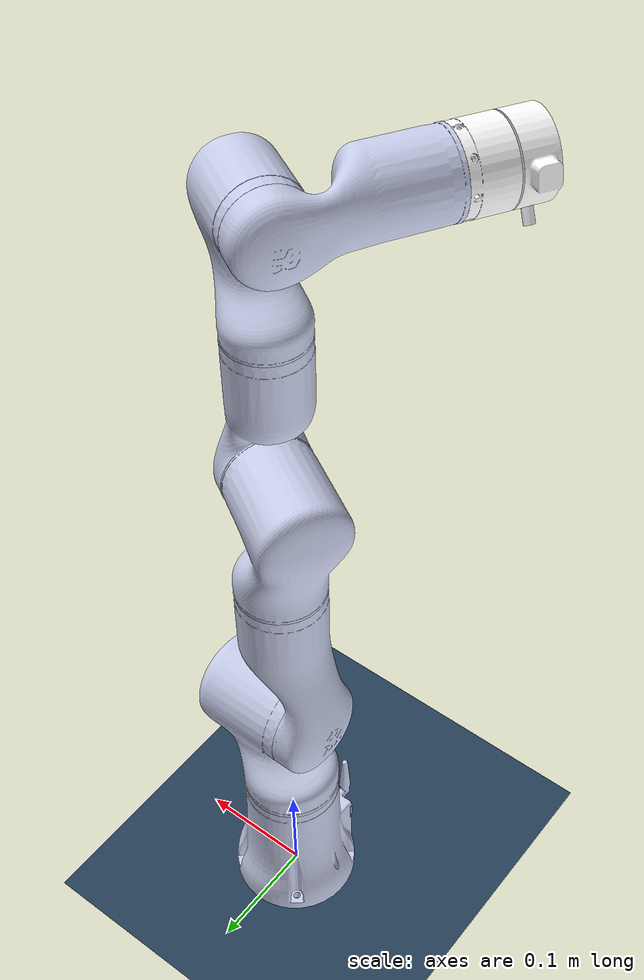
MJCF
<mujoco model="RM75-6F.STEP.SLDASM">
  <option timestep="0.0003" integrator="implicitfast">
		<flag sensornoise="enable" energy="enable" contact="disable"/>
	</option>
  <compiler angle="radian" meshdir="../meshes/"/>
  <asset>
    <mesh name="base_link" file="base_link.STL"/>
    <mesh name="link1" file="link1.STL"/>
    <mesh name="link2" file="link2.STL"/>
    <mesh name="link3" file="link3.STL"/>
    <mesh name="link4" file="link4.STL"/>
    <mesh name="link5" file="link5.STL"/>
    <mesh name="link6" file="link6.STL"/>
    <mesh name="link7" file="link7.STL"/>
    <texture type="skybox" builtin="gradient" rgb1="0.3 0.5 0.7" rgb2="0 0 0" width="512" height="3072"/>
        <texture type="2d" name="groundplane" builtin="checker" mark="edge" rgb1="0.2 0.3 0.4" rgb2="0.1 0.2 0.3"
      markrgb="0.8 0.8 0.8" width="300" height="300"/>
        <material name="groundplane" texture="groundplane" texuniform="true" texrepeat="5 5" reflectance="0.2"/>
  </asset>
  <worldbody>
    <light diffuse="0.6 0.6 0.6" pos="0 0 3"/>
    <light diffuse="0.6 0.6 0.6" pos="0 -0.3 3" dir="0 0.2 -0.8" directional="true"/>
    <geom name="floor" size="0 0 0.05" type="plane" material="groundplane"/>

    <geom type="mesh" contype="0" conaffinity="0" group="1" density="0" rgba="0.79216 0.81961 0.93333 1" mesh="base_link"/>
    <geom type="mesh" rgba="0.79216 0.81961 0.93333 1" mesh="base_link"/>
    <body name="link1" pos="0 0 0.1495">
      <inertial pos="0 0 0" quat="0.699375 0.105274 0.105308 0.699073" mass="0.59356" diaginertia="0.0012661 0.00124679 0.000496262"/>
      <joint name="joint1" pos="0 0 0" axis="0 0 -1" range="-3.14 3.14"/>
      <geom type="mesh" contype="0" conaffinity="0" group="1" density="0" rgba="0.79216 0.81961 0.93333 1" mesh="link1"/>
      <geom type="mesh" rgba="0.79216 0.81961 0.93333 1" mesh="link1"/>
      <body name="link2" pos="-0.006471 0 0.091" quat="0.5 0.5 0.5 0.5">
        <inertial pos="0 0 0" quat="0.426361 0.564049 -0.564124 0.426414" mass="0.43285" diaginertia="0.0013015 0.0012584 0.000238366"/>
        <joint name="joint2" pos="0 0 0" axis="0 0 -1" range="-3.14 3.14"/>
        <geom type="mesh" contype="0" conaffinity="0" group="1" density="0" rgba="0.79216 0.81961 0.93333 1" mesh="link2"/>
        <geom type="mesh" rgba="0.79216 0.81961 0.93333 1" mesh="link2"/>
        <body name="link3" pos="0 0.1495 0.006471" quat="0.612 -0.612 0.354 0.354">
          <inertial pos="0 0 0" quat="0.699221 0.105971 0.10601 0.699015" mass="0.431325" diaginertia="0.00079434 0.000774627 0.0002708"/>
          <joint name="joint3" pos="0 0 0" axis="0 0 1" range="-3.14 3.14"/>
          <geom type="mesh" contype="0" conaffinity="0" group="1" density="0" rgba="0.792157 0.819608 0.933333 1" mesh="link3"/>
          <geom type="mesh" rgba="0.792157 0.819608 0.933333 1" mesh="link3"/>
          <body name="link4" pos="-0.011436 0.000316 0.1065" quat="0.5 0.5 0.5 0.5">
            <inertial pos="0 0 0" quat="0.424973 0.565517 -0.564997 0.424695" mass="0.28965" diaginertia="0.000656042 0.00063737 0.000114628"/>
            <joint name="joint4" pos="0 0 0" axis="0 0 -1" range="-3.14 3.14"/>
            <geom type="mesh" contype="0" conaffinity="0" group="1" density="0" rgba="0.79216 0.81961 0.93333 1" mesh="link4"/>
            <geom type="mesh" rgba="0.79216 0.81961 0.93333 1" mesh="link4"/>
            <body name="link5" pos="-0.000316 0.1285 0.011436" quat="0.5 -0.5 0.5 0.5">
              <inertial pos="0 0 0" quat="0.700248 0.0977239 0.097714 0.700396" mass="0.23942" diaginertia="0.00028594 0.00027532 0.0001073"/>
              <joint name="joint5" pos="0 0 0" axis="0 0 -1" range="-3.14 3.14"/>
              <geom type="mesh" contype="0" conaffinity="0" group="1" density="0" rgba="0.79216 0.81961 0.93333 1" mesh="link5"/>
              <geom type="mesh" rgba="0.79216 0.81961 0.93333 1" mesh="link5"/>
              <body name="link6" pos="-0.009436 0 0.0815" quat="0 0.707 0 0.707">
                <inertial pos="0 0 0" quat="0.420058 0.569215 -0.568643 0.419751" mass="0.21879" diaginertia="0.000358601 0.00035053 8.07893e-05"/>
                <joint name="joint6" pos="0 0 0" axis="0 0 -1" range="-3.14 3.14"/>
                <geom type="mesh" contype="0" conaffinity="0" group="1" density="0" rgba="0.79216 0.81961 0.93333 1" mesh="link6"/>
                <geom type="mesh" rgba="0.79216 0.81961 0.93333 1" mesh="link6"/>
                <body name="link7" pos="0 0.115 0.009436" quat="0.5 -0.5 0.5 0.5">
                  <inertial pos="0 0 0" quat="0.184288 0.682541 -0.185247 0.682539" mass="0.14433" diaginertia="6.1463e-05 3.68926e-05 3.38524e-05"/>
                  <joint name="joint7" pos="0 0 0" axis="0 0 -1" range="-3.14 3.14"/>
                  <geom type="mesh" contype="0" conaffinity="0" group="1" density="0" rgba="1 1 1 1" mesh="link7"/>
                  <geom type="mesh" rgba="1 1 1 1" mesh="link7"/>
                </body>
              </body>
            </body>
          </body>
        </body>
      </body>
    </body>
  </worldbody>
  <actuator>

    <position name="joint1" ctrllimited="true" ctrlrange="-3.14 3.14" joint="joint1" kp="50"/>
    <position name="joint2" ctrllimited="true" ctrlrange="-3.14 3.14" joint="joint2" kp="50"/>
    <position name="joint3" ctrllimited="true" ctrlrange="-3.14 3.14" joint="joint3" kp="50"/>
    <position name="joint4" ctrllimited="true" ctrlrange="-3.14 3.14" joint="joint4" kp="50"/>
    <position name="joint5" ctrllimited="true" ctrlrange="-3.14 3.14" joint="joint5" kp="50"/>
    <position name="joint6" ctrllimited="true" ctrlrange="-3.14 3.14" joint="joint6" kp="50"/>
    <position name="joint7" ctrllimited="true" ctrlrange="-3.14 3.14" joint="joint7" kp="50"/>

    <velocity name="vjoint1" ctrllimited="true" ctrlrange="-3.14159 3.14159" joint="joint1" kv="80"/>
    <velocity name="vjoint2" ctrllimited="true" ctrlrange="-3.14159 3.14159" joint="joint2" kv="80"/>
    <velocity name="vjoint3" ctrllimited="true" ctrlrange="-3.14159 3.14159" joint="joint3" kv="80"/>
    <velocity name="vjoint4" ctrllimited="true" ctrlrange="-3.14159 3.14159" joint="joint4" kv="80"/>
    <velocity name="vjoint5" ctrllimited="true" ctrlrange="-3.14159 3.14159" joint="joint5" kv="80"/>
    <velocity name="vjoint6" ctrllimited="true" ctrlrange="-3.14159 3.14159" joint="joint6" kv="80"/>
    <velocity name="vjoint7" ctrllimited="true" ctrlrange="-3.14159 3.14159" joint="joint7" kv="80"/>

  </actuator>
</mujoco>
